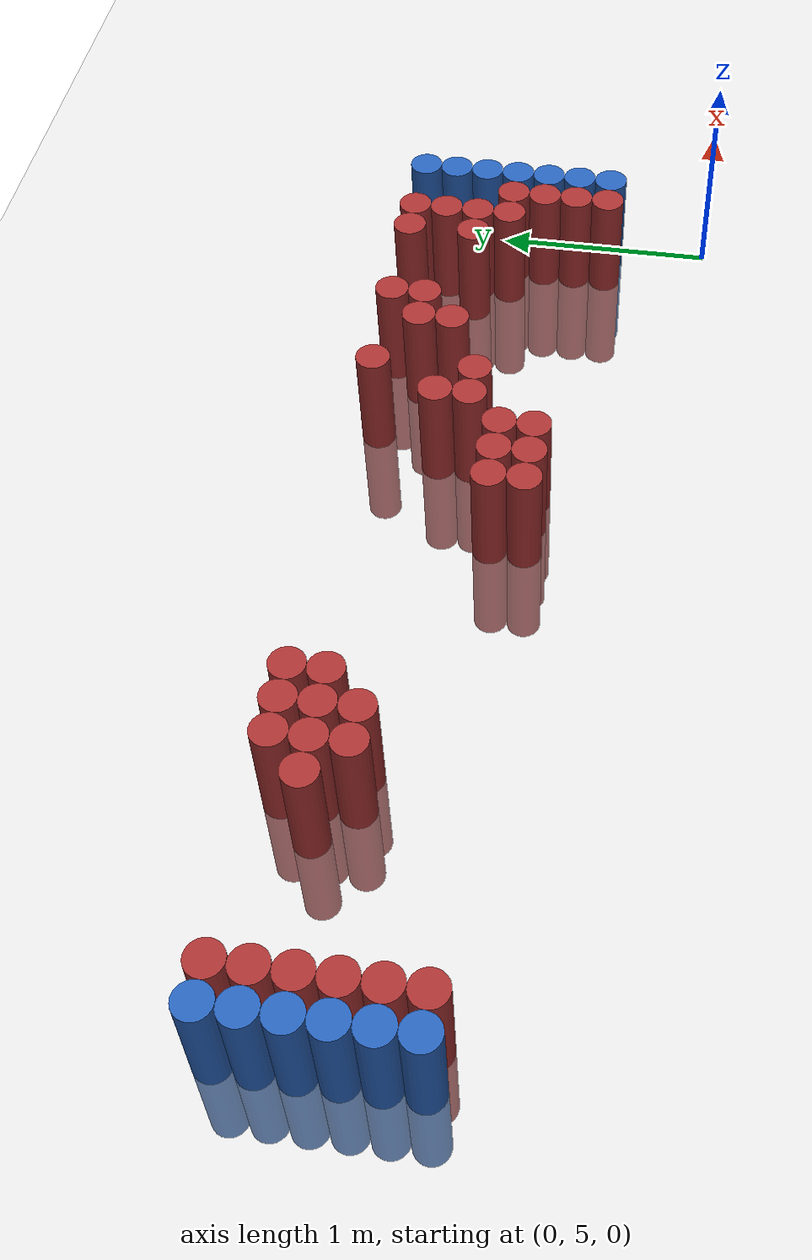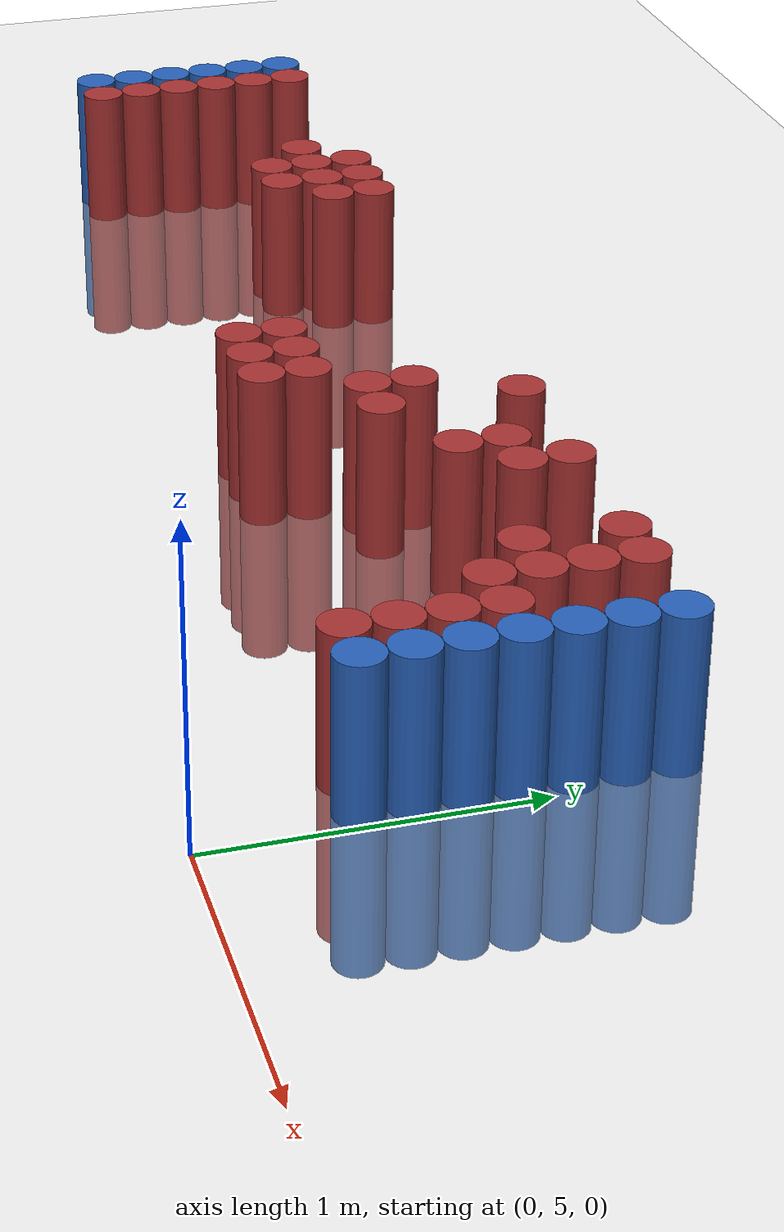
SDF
<sdf version="1.6">
 <world name="default">
  <model name="ground_plane">
   <static>1</static>
   <link name="link">
    <collision name="collision">
     <geometry><plane><normal>0 0 1</normal><size>100 100</size></plane></geometry>
     <surface><friction><ode><mu>100</mu><mu2>50</mu2></ode></friction></surface>
    </collision>
    <visual name="visual">
     <cast_shadows>0</cast_shadows>
     <geometry><plane><normal>0 0 1</normal><size>100 100</size></plane></geometry>
     <material>
      <script><uri>file://media/materials/scripts/gazebo.material</uri><name>Gazebo/Grey</name></script>
     </material>
    </visual>
   </link>
  </model>
  <model name="unit_cylinder_99">
   <static>1</static>
   <pose>-4.425000 5.625000 0.000000 0.000000 0.000000 0.000000</pose>
   <link name="link">
    <inertial>
     <mass>1</mass>
     <inertia><ixx>0.145833</ixx><ixy>0</ixy><ixz>0</ixz><iyy>0.145833</iyy><iyz>0</iyz><izz>0.125</izz></inertia>
    </inertial>
    <collision name="collision">
     <geometry><cylinder><radius>0.075000</radius><length>1</length></cylinder></geometry>
    </collision>
    <visual name="visual">
     <geometry><cylinder><radius>0.075000</radius><length>1</length></cylinder></geometry>
     <material>
      <ambient>0.152000 0.379000 0.720000 1</ambient>
      <diffuse>0.152000 0.379000 0.720000 1</diffuse>
     </material>
     <material>
      <script><name>Gazebo/Grey</name><uri>file://media/materials/scripts/gazebo.material</uri></script>
     </material>
    </visual>
   </link>
  </model>
  <model name="unit_cylinder_100">
   <static>1</static>
   <pose>-4.425000 5.775000 0.000000 0.000000 0.000000 0.000000</pose>
   <link name="link">
    <inertial>
     <mass>1</mass>
     <inertia><ixx>0.145833</ixx><ixy>0</ixy><ixz>0</ixz><iyy>0.145833</iyy><iyz>0</iyz><izz>0.125</izz></inertia>
    </inertial>
    <collision name="collision">
     <geometry><cylinder><radius>0.075000</radius><length>1</length></cylinder></geometry>
    </collision>
    <visual name="visual">
     <geometry><cylinder><radius>0.075000</radius><length>1</length></cylinder></geometry>
     <material>
      <ambient>0.152000 0.379000 0.720000 1</ambient>
      <diffuse>0.152000 0.379000 0.720000 1</diffuse>
     </material>
     <material>
      <script><name>Gazebo/Grey</name><uri>file://media/materials/scripts/gazebo.material</uri></script>
     </material>
    </visual>
   </link>
  </model>
  <model name="unit_cylinder_101">
   <static>1</static>
   <pose>-4.425000 5.925000 0.000000 0.000000 0.000000 0.000000</pose>
   <link name="link">
    <inertial>
     <mass>1</mass>
     <inertia><ixx>0.145833</ixx><ixy>0</ixy><ixz>0</ixz><iyy>0.145833</iyy><iyz>0</iyz><izz>0.125</izz></inertia>
    </inertial>
    <collision name="collision">
     <geometry><cylinder><radius>0.075000</radius><length>1</length></cylinder></geometry>
    </collision>
    <visual name="visual">
     <geometry><cylinder><radius>0.075000</radius><length>1</length></cylinder></geometry>
     <material>
      <ambient>0.152000 0.379000 0.720000 1</ambient>
      <diffuse>0.152000 0.379000 0.720000 1</diffuse>
     </material>
     <material>
      <script><name>Gazebo/Grey</name><uri>file://media/materials/scripts/gazebo.material</uri></script>
     </material>
    </visual>
   </link>
  </model>
  <model name="unit_cylinder_102">
   <static>1</static>
   <pose>-4.425000 6.075000 0.000000 0.000000 0.000000 0.000000</pose>
   <link name="link">
    <inertial>
     <mass>1</mass>
     <inertia><ixx>0.145833</ixx><ixy>0</ixy><ixz>0</ixz><iyy>0.145833</iyy><iyz>0</iyz><izz>0.125</izz></inertia>
    </inertial>
    <collision name="collision">
     <geometry><cylinder><radius>0.075000</radius><length>1</length></cylinder></geometry>
    </collision>
    <visual name="visual">
     <geometry><cylinder><radius>0.075000</radius><length>1</length></cylinder></geometry>
     <material>
      <ambient>0.152000 0.379000 0.720000 1</ambient>
      <diffuse>0.152000 0.379000 0.720000 1</diffuse>
     </material>
     <material>
      <script><name>Gazebo/Grey</name><uri>file://media/materials/scripts/gazebo.material</uri></script>
     </material>
    </visual>
   </link>
  </model>
  <model name="unit_cylinder_103">
   <static>1</static>
   <pose>-4.425000 6.225000 0.000000 0.000000 0.000000 0.000000</pose>
   <link name="link">
    <inertial>
     <mass>1</mass>
     <inertia><ixx>0.145833</ixx><ixy>0</ixy><ixz>0</ixz><iyy>0.145833</iyy><iyz>0</iyz><izz>0.125</izz></inertia>
    </inertial>
    <collision name="collision">
     <geometry><cylinder><radius>0.075000</radius><length>1</length></cylinder></geometry>
    </collision>
    <visual name="visual">
     <geometry><cylinder><radius>0.075000</radius><length>1</length></cylinder></geometry>
     <material>
      <ambient>0.152000 0.379000 0.720000 1</ambient>
      <diffuse>0.152000 0.379000 0.720000 1</diffuse>
     </material>
     <material>
      <script><name>Gazebo/Grey</name><uri>file://media/materials/scripts/gazebo.material</uri></script>
     </material>
    </visual>
   </link>
  </model>
  <model name="unit_cylinder_104">
   <static>1</static>
   <pose>-4.425000 6.375000 0.000000 0.000000 0.000000 0.000000</pose>
   <link name="link">
    <inertial>
     <mass>1</mass>
     <inertia><ixx>0.145833</ixx><ixy>0</ixy><ixz>0</ixz><iyy>0.145833</iyy><iyz>0</iyz><izz>0.125</izz></inertia>
    </inertial>
    <collision name="collision">
     <geometry><cylinder><radius>0.075000</radius><length>1</length></cylinder></geometry>
    </collision>
    <visual name="visual">
     <geometry><cylinder><radius>0.075000</radius><length>1</length></cylinder></geometry>
     <material>
      <ambient>0.152000 0.379000 0.720000 1</ambient>
      <diffuse>0.152000 0.379000 0.720000 1</diffuse>
     </material>
     <material>
      <script><name>Gazebo/Grey</name><uri>file://media/materials/scripts/gazebo.material</uri></script>
     </material>
    </visual>
   </link>
  </model>
  <model name="unit_cylinder_128">
   <static>1</static>
   <pose>-4.275000 5.625000 0.000000 0.000000 0.000000 0.000000</pose>
   <link name="link">
    <inertial>
     <mass>1</mass>
     <inertia><ixx>0.145833</ixx><ixy>0</ixy><ixz>0</ixz><iyy>0.145833</iyy><iyz>0</iyz><izz>0.125</izz></inertia>
    </inertial>
    <collision name="collision">
     <geometry><cylinder><radius>0.075000</radius><length>1</length></cylinder></geometry>
    </collision>
    <visual name="visual">
     <geometry><cylinder><radius>0.075000</radius><length>1</length></cylinder></geometry>
     <material>
      <ambient>0.648000 0.192000 0.192000 1</ambient>
      <diffuse>0.648000 0.192000 0.192000 1</diffuse>
     </material>
     <material>
      <script><name>Gazebo/Grey</name><uri>file://media/materials/scripts/gazebo.material</uri></script>
     </material>
    </visual>
   </link>
  </model>
  <model name="unit_cylinder_129">
   <static>1</static>
   <pose>-4.275000 5.775000 0.000000 0.000000 0.000000 0.000000</pose>
   <link name="link">
    <inertial>
     <mass>1</mass>
     <inertia><ixx>0.145833</ixx><ixy>0</ixy><ixz>0</ixz><iyy>0.145833</iyy><iyz>0</iyz><izz>0.125</izz></inertia>
    </inertial>
    <collision name="collision">
     <geometry><cylinder><radius>0.075000</radius><length>1</length></cylinder></geometry>
    </collision>
    <visual name="visual">
     <geometry><cylinder><radius>0.075000</radius><length>1</length></cylinder></geometry>
     <material>
      <ambient>0.648000 0.192000 0.192000 1</ambient>
      <diffuse>0.648000 0.192000 0.192000 1</diffuse>
     </material>
     <material>
      <script><name>Gazebo/Grey</name><uri>file://media/materials/scripts/gazebo.material</uri></script>
     </material>
    </visual>
   </link>
  </model>
  <model name="unit_cylinder_130">
   <static>1</static>
   <pose>-4.275000 5.925000 0.000000 0.000000 0.000000 0.000000</pose>
   <link name="link">
    <inertial>
     <mass>1</mass>
     <inertia><ixx>0.145833</ixx><ixy>0</ixy><ixz>0</ixz><iyy>0.145833</iyy><iyz>0</iyz><izz>0.125</izz></inertia>
    </inertial>
    <collision name="collision">
     <geometry><cylinder><radius>0.075000</radius><length>1</length></cylinder></geometry>
    </collision>
    <visual name="visual">
     <geometry><cylinder><radius>0.075000</radius><length>1</length></cylinder></geometry>
     <material>
      <ambient>0.648000 0.192000 0.192000 1</ambient>
      <diffuse>0.648000 0.192000 0.192000 1</diffuse>
     </material>
     <material>
      <script><name>Gazebo/Grey</name><uri>file://media/materials/scripts/gazebo.material</uri></script>
     </material>
    </visual>
   </link>
  </model>
  <model name="unit_cylinder_131">
   <static>1</static>
   <pose>-4.275000 6.075000 0.000000 0.000000 0.000000 0.000000</pose>
   <link name="link">
    <inertial>
     <mass>1</mass>
     <inertia><ixx>0.145833</ixx><ixy>0</ixy><ixz>0</ixz><iyy>0.145833</iyy><iyz>0</iyz><izz>0.125</izz></inertia>
    </inertial>
    <collision name="collision">
     <geometry><cylinder><radius>0.075000</radius><length>1</length></cylinder></geometry>
    </collision>
    <visual name="visual">
     <geometry><cylinder><radius>0.075000</radius><length>1</length></cylinder></geometry>
     <material>
      <ambient>0.648000 0.192000 0.192000 1</ambient>
      <diffuse>0.648000 0.192000 0.192000 1</diffuse>
     </material>
     <material>
      <script><name>Gazebo/Grey</name><uri>file://media/materials/scripts/gazebo.material</uri></script>
     </material>
    </visual>
   </link>
  </model>
  <model name="unit_cylinder_132">
   <static>1</static>
   <pose>-4.275000 6.225000 0.000000 0.000000 0.000000 0.000000</pose>
   <link name="link">
    <inertial>
     <mass>1</mass>
     <inertia><ixx>0.145833</ixx><ixy>0</ixy><ixz>0</ixz><iyy>0.145833</iyy><iyz>0</iyz><izz>0.125</izz></inertia>
    </inertial>
    <collision name="collision">
     <geometry><cylinder><radius>0.075000</radius><length>1</length></cylinder></geometry>
    </collision>
    <visual name="visual">
     <geometry><cylinder><radius>0.075000</radius><length>1</length></cylinder></geometry>
     <material>
      <ambient>0.648000 0.192000 0.192000 1</ambient>
      <diffuse>0.648000 0.192000 0.192000 1</diffuse>
     </material>
     <material>
      <script><name>Gazebo/Grey</name><uri>file://media/materials/scripts/gazebo.material</uri></script>
     </material>
    </visual>
   </link>
  </model>
  <model name="unit_cylinder_133">
   <static>1</static>
   <pose>-4.275000 6.375000 0.000000 0.000000 0.000000 0.000000</pose>
   <link name="link">
    <inertial>
     <mass>1</mass>
     <inertia><ixx>0.145833</ixx><ixy>0</ixy><ixz>0</ixz><iyy>0.145833</iyy><iyz>0</iyz><izz>0.125</izz></inertia>
    </inertial>
    <collision name="collision">
     <geometry><cylinder><radius>0.075000</radius><length>1</length></cylinder></geometry>
    </collision>
    <visual name="visual">
     <geometry><cylinder><radius>0.075000</radius><length>1</length></cylinder></geometry>
     <material>
      <ambient>0.648000 0.192000 0.192000 1</ambient>
      <diffuse>0.648000 0.192000 0.192000 1</diffuse>
     </material>
     <material>
      <script><name>Gazebo/Grey</name><uri>file://media/materials/scripts/gazebo.material</uri></script>
     </material>
    </visual>
   </link>
  </model>
  <model name="unit_cylinder_162">
   <static>1</static>
   <pose>-3.525000 6.225000 0.000000 0.000000 0.000000 0.000000</pose>
   <link name="link">
    <inertial>
     <mass>1</mass>
     <inertia><ixx>0.145833</ixx><ixy>0</ixy><ixz>0</ixz><iyy>0.145833</iyy><iyz>0</iyz><izz>0.125</izz></inertia>
    </inertial>
    <collision name="collision">
     <geometry><cylinder><radius>0.075000</radius><length>1</length></cylinder></geometry>
    </collision>
    <visual name="visual">
     <geometry><cylinder><radius>0.075000</radius><length>1</length></cylinder></geometry>
     <material>
      <ambient>0.648000 0.192000 0.192000 1</ambient>
      <diffuse>0.648000 0.192000 0.192000 1</diffuse>
     </material>
     <material>
      <script><name>Gazebo/Grey</name><uri>file://media/materials/scripts/gazebo.material</uri></script>
     </material>
    </visual>
   </link>
  </model>
  <model name="unit_cylinder_165">
   <static>1</static>
   <pose>-3.375000 6.075000 0.000000 0.000000 0.000000 0.000000</pose>
   <link name="link">
    <inertial>
     <mass>1</mass>
     <inertia><ixx>0.145833</ixx><ixy>0</ixy><ixz>0</ixz><iyy>0.145833</iyy><iyz>0</iyz><izz>0.125</izz></inertia>
    </inertial>
    <collision name="collision">
     <geometry><cylinder><radius>0.075000</radius><length>1</length></cylinder></geometry>
    </collision>
    <visual name="visual">
     <geometry><cylinder><radius>0.075000</radius><length>1</length></cylinder></geometry>
     <material>
      <ambient>0.648000 0.192000 0.192000 1</ambient>
      <diffuse>0.648000 0.192000 0.192000 1</diffuse>
     </material>
     <material>
      <script><name>Gazebo/Grey</name><uri>file://media/materials/scripts/gazebo.material</uri></script>
     </material>
    </visual>
   </link>
  </model>
  <model name="unit_cylinder_166">
   <static>1</static>
   <pose>-3.375000 6.225000 0.000000 0.000000 0.000000 0.000000</pose>
   <link name="link">
    <inertial>
     <mass>1</mass>
     <inertia><ixx>0.145833</ixx><ixy>0</ixy><ixz>0</ixz><iyy>0.145833</iyy><iyz>0</iyz><izz>0.125</izz></inertia>
    </inertial>
    <collision name="collision">
     <geometry><cylinder><radius>0.075000</radius><length>1</length></cylinder></geometry>
    </collision>
    <visual name="visual">
     <geometry><cylinder><radius>0.075000</radius><length>1</length></cylinder></geometry>
     <material>
      <ambient>0.648000 0.192000 0.192000 1</ambient>
      <diffuse>0.648000 0.192000 0.192000 1</diffuse>
     </material>
     <material>
      <script><name>Gazebo/Grey</name><uri>file://media/materials/scripts/gazebo.material</uri></script>
     </material>
    </visual>
   </link>
  </model>
  <model name="unit_cylinder_167">
   <static>1</static>
   <pose>-3.375000 6.375000 0.000000 0.000000 0.000000 0.000000</pose>
   <link name="link">
    <inertial>
     <mass>1</mass>
     <inertia><ixx>0.145833</ixx><ixy>0</ixy><ixz>0</ixz><iyy>0.145833</iyy><iyz>0</iyz><izz>0.125</izz></inertia>
    </inertial>
    <collision name="collision">
     <geometry><cylinder><radius>0.075000</radius><length>1</length></cylinder></geometry>
    </collision>
    <visual name="visual">
     <geometry><cylinder><radius>0.075000</radius><length>1</length></cylinder></geometry>
     <material>
      <ambient>0.648000 0.192000 0.192000 1</ambient>
      <diffuse>0.648000 0.192000 0.192000 1</diffuse>
     </material>
     <material>
      <script><name>Gazebo/Grey</name><uri>file://media/materials/scripts/gazebo.material</uri></script>
     </material>
    </visual>
   </link>
  </model>
  <model name="unit_cylinder_173">
   <static>1</static>
   <pose>-3.225000 6.075000 0.000000 0.000000 0.000000 0.000000</pose>
   <link name="link">
    <inertial>
     <mass>1</mass>
     <inertia><ixx>0.145833</ixx><ixy>0</ixy><ixz>0</ixz><iyy>0.145833</iyy><iyz>0</iyz><izz>0.125</izz></inertia>
    </inertial>
    <collision name="collision">
     <geometry><cylinder><radius>0.075000</radius><length>1</length></cylinder></geometry>
    </collision>
    <visual name="visual">
     <geometry><cylinder><radius>0.075000</radius><length>1</length></cylinder></geometry>
     <material>
      <ambient>0.648000 0.192000 0.192000 1</ambient>
      <diffuse>0.648000 0.192000 0.192000 1</diffuse>
     </material>
     <material>
      <script><name>Gazebo/Grey</name><uri>file://media/materials/scripts/gazebo.material</uri></script>
     </material>
    </visual>
   </link>
  </model>
  <model name="unit_cylinder_174">
   <static>1</static>
   <pose>-3.225000 6.225000 0.000000 0.000000 0.000000 0.000000</pose>
   <link name="link">
    <inertial>
     <mass>1</mass>
     <inertia><ixx>0.145833</ixx><ixy>0</ixy><ixz>0</ixz><iyy>0.145833</iyy><iyz>0</iyz><izz>0.125</izz></inertia>
    </inertial>
    <collision name="collision">
     <geometry><cylinder><radius>0.075000</radius><length>1</length></cylinder></geometry>
    </collision>
    <visual name="visual">
     <geometry><cylinder><radius>0.075000</radius><length>1</length></cylinder></geometry>
     <material>
      <ambient>0.648000 0.192000 0.192000 1</ambient>
      <diffuse>0.648000 0.192000 0.192000 1</diffuse>
     </material>
     <material>
      <script><name>Gazebo/Grey</name><uri>file://media/materials/scripts/gazebo.material</uri></script>
     </material>
    </visual>
   </link>
  </model>
  <model name="unit_cylinder_175">
   <static>1</static>
   <pose>-3.225000 6.375000 0.000000 0.000000 0.000000 0.000000</pose>
   <link name="link">
    <inertial>
     <mass>1</mass>
     <inertia><ixx>0.145833</ixx><ixy>0</ixy><ixz>0</ixz><iyy>0.145833</iyy><iyz>0</iyz><izz>0.125</izz></inertia>
    </inertial>
    <collision name="collision">
     <geometry><cylinder><radius>0.075000</radius><length>1</length></cylinder></geometry>
    </collision>
    <visual name="visual">
     <geometry><cylinder><radius>0.075000</radius><length>1</length></cylinder></geometry>
     <material>
      <ambient>0.648000 0.192000 0.192000 1</ambient>
      <diffuse>0.648000 0.192000 0.192000 1</diffuse>
     </material>
     <material>
      <script><name>Gazebo/Grey</name><uri>file://media/materials/scripts/gazebo.material</uri></script>
     </material>
    </visual>
   </link>
  </model>
  <model name="unit_cylinder_183">
   <static>1</static>
   <pose>-3.075000 6.225000 0.000000 0.000000 0.000000 0.000000</pose>
   <link name="link">
    <inertial>
     <mass>1</mass>
     <inertia><ixx>0.145833</ixx><ixy>0</ixy><ixz>0</ixz><iyy>0.145833</iyy><iyz>0</iyz><izz>0.125</izz></inertia>
    </inertial>
    <collision name="collision">
     <geometry><cylinder><radius>0.075000</radius><length>1</length></cylinder></geometry>
    </collision>
    <visual name="visual">
     <geometry><cylinder><radius>0.075000</radius><length>1</length></cylinder></geometry>
     <material>
      <ambient>0.648000 0.192000 0.192000 1</ambient>
      <diffuse>0.648000 0.192000 0.192000 1</diffuse>
     </material>
     <material>
      <script><name>Gazebo/Grey</name><uri>file://media/materials/scripts/gazebo.material</uri></script>
     </material>
    </visual>
   </link>
  </model>
  <model name="unit_cylinder_184">
   <static>1</static>
   <pose>-3.075000 6.375000 0.000000 0.000000 0.000000 0.000000</pose>
   <link name="link">
    <inertial>
     <mass>1</mass>
     <inertia><ixx>0.145833</ixx><ixy>0</ixy><ixz>0</ixz><iyy>0.145833</iyy><iyz>0</iyz><izz>0.125</izz></inertia>
    </inertial>
    <collision name="collision">
     <geometry><cylinder><radius>0.075000</radius><length>1</length></cylinder></geometry>
    </collision>
    <visual name="visual">
     <geometry><cylinder><radius>0.075000</radius><length>1</length></cylinder></geometry>
     <material>
      <ambient>0.648000 0.192000 0.192000 1</ambient>
      <diffuse>0.648000 0.192000 0.192000 1</diffuse>
     </material>
     <material>
      <script><name>Gazebo/Grey</name><uri>file://media/materials/scripts/gazebo.material</uri></script>
     </material>
    </visual>
   </link>
  </model>
  <model name="unit_cylinder_191">
   <static>1</static>
   <pose>-2.025000 5.625000 0.000000 0.000000 0.000000 0.000000</pose>
   <link name="link">
    <inertial>
     <mass>1</mass>
     <inertia><ixx>0.145833</ixx><ixy>0</ixy><ixz>0</ixz><iyy>0.145833</iyy><iyz>0</iyz><izz>0.125</izz></inertia>
    </inertial>
    <collision name="collision">
     <geometry><cylinder><radius>0.075000</radius><length>1</length></cylinder></geometry>
    </collision>
    <visual name="visual">
     <geometry><cylinder><radius>0.075000</radius><length>1</length></cylinder></geometry>
     <material>
      <ambient>0.648000 0.192000 0.192000 1</ambient>
      <diffuse>0.648000 0.192000 0.192000 1</diffuse>
     </material>
     <material>
      <script><name>Gazebo/Grey</name><uri>file://media/materials/scripts/gazebo.material</uri></script>
     </material>
    </visual>
   </link>
  </model>
  <model name="unit_cylinder_192">
   <static>1</static>
   <pose>-2.025000 5.775000 0.000000 0.000000 0.000000 0.000000</pose>
   <link name="link">
    <inertial>
     <mass>1</mass>
     <inertia><ixx>0.145833</ixx><ixy>0</ixy><ixz>0</ixz><iyy>0.145833</iyy><iyz>0</iyz><izz>0.125</izz></inertia>
    </inertial>
    <collision name="collision">
     <geometry><cylinder><radius>0.075000</radius><length>1</length></cylinder></geometry>
    </collision>
    <visual name="visual">
     <geometry><cylinder><radius>0.075000</radius><length>1</length></cylinder></geometry>
     <material>
      <ambient>0.648000 0.192000 0.192000 1</ambient>
      <diffuse>0.648000 0.192000 0.192000 1</diffuse>
     </material>
     <material>
      <script><name>Gazebo/Grey</name><uri>file://media/materials/scripts/gazebo.material</uri></script>
     </material>
    </visual>
   </link>
  </model>
  <model name="unit_cylinder_200">
   <static>1</static>
   <pose>-1.875000 5.625000 0.000000 0.000000 0.000000 0.000000</pose>
   <link name="link">
    <inertial>
     <mass>1</mass>
     <inertia><ixx>0.145833</ixx><ixy>0</ixy><ixz>0</ixz><iyy>0.145833</iyy><iyz>0</iyz><izz>0.125</izz></inertia>
    </inertial>
    <collision name="collision">
     <geometry><cylinder><radius>0.075000</radius><length>1</length></cylinder></geometry>
    </collision>
    <visual name="visual">
     <geometry><cylinder><radius>0.075000</radius><length>1</length></cylinder></geometry>
     <material>
      <ambient>0.648000 0.192000 0.192000 1</ambient>
      <diffuse>0.648000 0.192000 0.192000 1</diffuse>
     </material>
     <material>
      <script><name>Gazebo/Grey</name><uri>file://media/materials/scripts/gazebo.material</uri></script>
     </material>
    </visual>
   </link>
  </model>
  <model name="unit_cylinder_201">
   <static>1</static>
   <pose>-1.875000 5.775000 0.000000 0.000000 0.000000 0.000000</pose>
   <link name="link">
    <inertial>
     <mass>1</mass>
     <inertia><ixx>0.145833</ixx><ixy>0</ixy><ixz>0</ixz><iyy>0.145833</iyy><iyz>0</iyz><izz>0.125</izz></inertia>
    </inertial>
    <collision name="collision">
     <geometry><cylinder><radius>0.075000</radius><length>1</length></cylinder></geometry>
    </collision>
    <visual name="visual">
     <geometry><cylinder><radius>0.075000</radius><length>1</length></cylinder></geometry>
     <material>
      <ambient>0.648000 0.192000 0.192000 1</ambient>
      <diffuse>0.648000 0.192000 0.192000 1</diffuse>
     </material>
     <material>
      <script><name>Gazebo/Grey</name><uri>file://media/materials/scripts/gazebo.material</uri></script>
     </material>
    </visual>
   </link>
  </model>
  <model name="unit_cylinder_209">
   <static>1</static>
   <pose>-1.725000 5.625000 0.000000 0.000000 0.000000 0.000000</pose>
   <link name="link">
    <inertial>
     <mass>1</mass>
     <inertia><ixx>0.145833</ixx><ixy>0</ixy><ixz>0</ixz><iyy>0.145833</iyy><iyz>0</iyz><izz>0.125</izz></inertia>
    </inertial>
    <collision name="collision">
     <geometry><cylinder><radius>0.075000</radius><length>1</length></cylinder></geometry>
    </collision>
    <visual name="visual">
     <geometry><cylinder><radius>0.075000</radius><length>1</length></cylinder></geometry>
     <material>
      <ambient>0.648000 0.192000 0.192000 1</ambient>
      <diffuse>0.648000 0.192000 0.192000 1</diffuse>
     </material>
     <material>
      <script><name>Gazebo/Grey</name><uri>file://media/materials/scripts/gazebo.material</uri></script>
     </material>
    </visual>
   </link>
  </model>
  <model name="unit_cylinder_210">
   <static>1</static>
   <pose>-1.725000 5.775000 0.000000 0.000000 0.000000 0.000000</pose>
   <link name="link">
    <inertial>
     <mass>1</mass>
     <inertia><ixx>0.145833</ixx><ixy>0</ixy><ixz>0</ixz><iyy>0.145833</iyy><iyz>0</iyz><izz>0.125</izz></inertia>
    </inertial>
    <collision name="collision">
     <geometry><cylinder><radius>0.075000</radius><length>1</length></cylinder></geometry>
    </collision>
    <visual name="visual">
     <geometry><cylinder><radius>0.075000</radius><length>1</length></cylinder></geometry>
     <material>
      <ambient>0.648000 0.192000 0.192000 1</ambient>
      <diffuse>0.648000 0.192000 0.192000 1</diffuse>
     </material>
     <material>
      <script><name>Gazebo/Grey</name><uri>file://media/materials/scripts/gazebo.material</uri></script>
     </material>
    </visual>
   </link>
  </model>
  <model name="unit_cylinder_216">
   <static>1</static>
   <pose>-1.575000 5.925000 0.000000 0.000000 0.000000 0.000000</pose>
   <link name="link">
    <inertial>
     <mass>1</mass>
     <inertia><ixx>0.145833</ixx><ixy>0</ixy><ixz>0</ixz><iyy>0.145833</iyy><iyz>0</iyz><izz>0.125</izz></inertia>
    </inertial>
    <collision name="collision">
     <geometry><cylinder><radius>0.075000</radius><length>1</length></cylinder></geometry>
    </collision>
    <visual name="visual">
     <geometry><cylinder><radius>0.075000</radius><length>1</length></cylinder></geometry>
     <material>
      <ambient>0.648000 0.192000 0.192000 1</ambient>
      <diffuse>0.648000 0.192000 0.192000 1</diffuse>
     </material>
     <material>
      <script><name>Gazebo/Grey</name><uri>file://media/materials/scripts/gazebo.material</uri></script>
     </material>
    </visual>
   </link>
  </model>
  <model name="unit_cylinder_217">
   <static>1</static>
   <pose>-1.575000 6.075000 0.000000 0.000000 0.000000 0.000000</pose>
   <link name="link">
    <inertial>
     <mass>1</mass>
     <inertia><ixx>0.145833</ixx><ixy>0</ixy><ixz>0</ixz><iyy>0.145833</iyy><iyz>0</iyz><izz>0.125</izz></inertia>
    </inertial>
    <collision name="collision">
     <geometry><cylinder><radius>0.075000</radius><length>1</length></cylinder></geometry>
    </collision>
    <visual name="visual">
     <geometry><cylinder><radius>0.075000</radius><length>1</length></cylinder></geometry>
     <material>
      <ambient>0.648000 0.192000 0.192000 1</ambient>
      <diffuse>0.648000 0.192000 0.192000 1</diffuse>
     </material>
     <material>
      <script><name>Gazebo/Grey</name><uri>file://media/materials/scripts/gazebo.material</uri></script>
     </material>
    </visual>
   </link>
  </model>
  <model name="unit_cylinder_222">
   <static>1</static>
   <pose>-1.425000 5.925000 0.000000 0.000000 0.000000 0.000000</pose>
   <link name="link">
    <inertial>
     <mass>1</mass>
     <inertia><ixx>0.145833</ixx><ixy>0</ixy><ixz>0</ixz><iyy>0.145833</iyy><iyz>0</iyz><izz>0.125</izz></inertia>
    </inertial>
    <collision name="collision">
     <geometry><cylinder><radius>0.075000</radius><length>1</length></cylinder></geometry>
    </collision>
    <visual name="visual">
     <geometry><cylinder><radius>0.075000</radius><length>1</length></cylinder></geometry>
     <material>
      <ambient>0.648000 0.192000 0.192000 1</ambient>
      <diffuse>0.648000 0.192000 0.192000 1</diffuse>
     </material>
     <material>
      <script><name>Gazebo/Grey</name><uri>file://media/materials/scripts/gazebo.material</uri></script>
     </material>
    </visual>
   </link>
  </model>
  <model name="unit_cylinder_223">
   <static>1</static>
   <pose>-1.425000 6.375000 0.000000 0.000000 0.000000 0.000000</pose>
   <link name="link">
    <inertial>
     <mass>1</mass>
     <inertia><ixx>0.145833</ixx><ixy>0</ixy><ixz>0</ixz><iyy>0.145833</iyy><iyz>0</iyz><izz>0.125</izz></inertia>
    </inertial>
    <collision name="collision">
     <geometry><cylinder><radius>0.075000</radius><length>1</length></cylinder></geometry>
    </collision>
    <visual name="visual">
     <geometry><cylinder><radius>0.075000</radius><length>1</length></cylinder></geometry>
     <material>
      <ambient>0.648000 0.192000 0.192000 1</ambient>
      <diffuse>0.648000 0.192000 0.192000 1</diffuse>
     </material>
     <material>
      <script><name>Gazebo/Grey</name><uri>file://media/materials/scripts/gazebo.material</uri></script>
     </material>
    </visual>
   </link>
  </model>
  <model name="unit_cylinder_229">
   <static>1</static>
   <pose>-1.125000 6.075000 0.000000 0.000000 0.000000 0.000000</pose>
   <link name="link">
    <inertial>
     <mass>1</mass>
     <inertia><ixx>0.145833</ixx><ixy>0</ixy><ixz>0</ixz><iyy>0.145833</iyy><iyz>0</iyz><izz>0.125</izz></inertia>
    </inertial>
    <collision name="collision">
     <geometry><cylinder><radius>0.075000</radius><length>1</length></cylinder></geometry>
    </collision>
    <visual name="visual">
     <geometry><cylinder><radius>0.075000</radius><length>1</length></cylinder></geometry>
     <material>
      <ambient>0.648000 0.192000 0.192000 1</ambient>
      <diffuse>0.648000 0.192000 0.192000 1</diffuse>
     </material>
     <material>
      <script><name>Gazebo/Grey</name><uri>file://media/materials/scripts/gazebo.material</uri></script>
     </material>
    </visual>
   </link>
  </model>
  <model name="unit_cylinder_230">
   <static>1</static>
   <pose>-1.125000 6.225000 0.000000 0.000000 0.000000 0.000000</pose>
   <link name="link">
    <inertial>
     <mass>1</mass>
     <inertia><ixx>0.145833</ixx><ixy>0</ixy><ixz>0</ixz><iyy>0.145833</iyy><iyz>0</iyz><izz>0.125</izz></inertia>
    </inertial>
    <collision name="collision">
     <geometry><cylinder><radius>0.075000</radius><length>1</length></cylinder></geometry>
    </collision>
    <visual name="visual">
     <geometry><cylinder><radius>0.075000</radius><length>1</length></cylinder></geometry>
     <material>
      <ambient>0.648000 0.192000 0.192000 1</ambient>
      <diffuse>0.648000 0.192000 0.192000 1</diffuse>
     </material>
     <material>
      <script><name>Gazebo/Grey</name><uri>file://media/materials/scripts/gazebo.material</uri></script>
     </material>
    </visual>
   </link>
  </model>
  <model name="unit_cylinder_236">
   <static>1</static>
   <pose>-0.975000 6.225000 0.000000 0.000000 0.000000 0.000000</pose>
   <link name="link">
    <inertial>
     <mass>1</mass>
     <inertia><ixx>0.145833</ixx><ixy>0</ixy><ixz>0</ixz><iyy>0.145833</iyy><iyz>0</iyz><izz>0.125</izz></inertia>
    </inertial>
    <collision name="collision">
     <geometry><cylinder><radius>0.075000</radius><length>1</length></cylinder></geometry>
    </collision>
    <visual name="visual">
     <geometry><cylinder><radius>0.075000</radius><length>1</length></cylinder></geometry>
     <material>
      <ambient>0.648000 0.192000 0.192000 1</ambient>
      <diffuse>0.648000 0.192000 0.192000 1</diffuse>
     </material>
     <material>
      <script><name>Gazebo/Grey</name><uri>file://media/materials/scripts/gazebo.material</uri></script>
     </material>
    </visual>
   </link>
  </model>
  <model name="unit_cylinder_237">
   <static>1</static>
   <pose>-0.975000 6.375000 0.000000 0.000000 0.000000 0.000000</pose>
   <link name="link">
    <inertial>
     <mass>1</mass>
     <inertia><ixx>0.145833</ixx><ixy>0</ixy><ixz>0</ixz><iyy>0.145833</iyy><iyz>0</iyz><izz>0.125</izz></inertia>
    </inertial>
    <collision name="collision">
     <geometry><cylinder><radius>0.075000</radius><length>1</length></cylinder></geometry>
    </collision>
    <visual name="visual">
     <geometry><cylinder><radius>0.075000</radius><length>1</length></cylinder></geometry>
     <material>
      <ambient>0.648000 0.192000 0.192000 1</ambient>
      <diffuse>0.648000 0.192000 0.192000 1</diffuse>
     </material>
     <material>
      <script><name>Gazebo/Grey</name><uri>file://media/materials/scripts/gazebo.material</uri></script>
     </material>
    </visual>
   </link>
  </model>
  <model name="unit_cylinder_254">
   <static>1</static>
   <pose>-0.525000 6.075000 0.000000 0.000000 0.000000 0.000000</pose>
   <link name="link">
    <inertial>
     <mass>1</mass>
     <inertia><ixx>0.145833</ixx><ixy>0</ixy><ixz>0</ixz><iyy>0.145833</iyy><iyz>0</iyz><izz>0.125</izz></inertia>
    </inertial>
    <collision name="collision">
     <geometry><cylinder><radius>0.075000</radius><length>1</length></cylinder></geometry>
    </collision>
    <visual name="visual">
     <geometry><cylinder><radius>0.075000</radius><length>1</length></cylinder></geometry>
     <material>
      <ambient>0.648000 0.192000 0.192000 1</ambient>
      <diffuse>0.648000 0.192000 0.192000 1</diffuse>
     </material>
     <material>
      <script><name>Gazebo/Grey</name><uri>file://media/materials/scripts/gazebo.material</uri></script>
     </material>
    </visual>
   </link>
  </model>
  <model name="unit_cylinder_255">
   <static>1</static>
   <pose>-0.525000 6.375000 0.000000 0.000000 0.000000 0.000000</pose>
   <link name="link">
    <inertial>
     <mass>1</mass>
     <inertia><ixx>0.145833</ixx><ixy>0</ixy><ixz>0</ixz><iyy>0.145833</iyy><iyz>0</iyz><izz>0.125</izz></inertia>
    </inertial>
    <collision name="collision">
     <geometry><cylinder><radius>0.075000</radius><length>1</length></cylinder></geometry>
    </collision>
    <visual name="visual">
     <geometry><cylinder><radius>0.075000</radius><length>1</length></cylinder></geometry>
     <material>
      <ambient>0.648000 0.192000 0.192000 1</ambient>
      <diffuse>0.648000 0.192000 0.192000 1</diffuse>
     </material>
     <material>
      <script><name>Gazebo/Grey</name><uri>file://media/materials/scripts/gazebo.material</uri></script>
     </material>
    </visual>
   </link>
  </model>
  <model name="unit_cylinder_259">
   <static>1</static>
   <pose>-0.375000 5.925000 0.000000 0.000000 0.000000 0.000000</pose>
   <link name="link">
    <inertial>
     <mass>1</mass>
     <inertia><ixx>0.145833</ixx><ixy>0</ixy><ixz>0</ixz><iyy>0.145833</iyy><iyz>0</iyz><izz>0.125</izz></inertia>
    </inertial>
    <collision name="collision">
     <geometry><cylinder><radius>0.075000</radius><length>1</length></cylinder></geometry>
    </collision>
    <visual name="visual">
     <geometry><cylinder><radius>0.075000</radius><length>1</length></cylinder></geometry>
     <material>
      <ambient>0.648000 0.192000 0.192000 1</ambient>
      <diffuse>0.648000 0.192000 0.192000 1</diffuse>
     </material>
     <material>
      <script><name>Gazebo/Grey</name><uri>file://media/materials/scripts/gazebo.material</uri></script>
     </material>
    </visual>
   </link>
  </model>
  <model name="unit_cylinder_260">
   <static>1</static>
   <pose>-0.375000 6.075000 0.000000 0.000000 0.000000 0.000000</pose>
   <link name="link">
    <inertial>
     <mass>1</mass>
     <inertia><ixx>0.145833</ixx><ixy>0</ixy><ixz>0</ixz><iyy>0.145833</iyy><iyz>0</iyz><izz>0.125</izz></inertia>
    </inertial>
    <collision name="collision">
     <geometry><cylinder><radius>0.075000</radius><length>1</length></cylinder></geometry>
    </collision>
    <visual name="visual">
     <geometry><cylinder><radius>0.075000</radius><length>1</length></cylinder></geometry>
     <material>
      <ambient>0.648000 0.192000 0.192000 1</ambient>
      <diffuse>0.648000 0.192000 0.192000 1</diffuse>
     </material>
     <material>
      <script><name>Gazebo/Grey</name><uri>file://media/materials/scripts/gazebo.material</uri></script>
     </material>
    </visual>
   </link>
  </model>
  <model name="unit_cylinder_261">
   <static>1</static>
   <pose>-0.375000 6.225000 0.000000 0.000000 0.000000 0.000000</pose>
   <link name="link">
    <inertial>
     <mass>1</mass>
     <inertia><ixx>0.145833</ixx><ixy>0</ixy><ixz>0</ixz><iyy>0.145833</iyy><iyz>0</iyz><izz>0.125</izz></inertia>
    </inertial>
    <collision name="collision">
     <geometry><cylinder><radius>0.075000</radius><length>1</length></cylinder></geometry>
    </collision>
    <visual name="visual">
     <geometry><cylinder><radius>0.075000</radius><length>1</length></cylinder></geometry>
     <material>
      <ambient>0.648000 0.192000 0.192000 1</ambient>
      <diffuse>0.648000 0.192000 0.192000 1</diffuse>
     </material>
     <material>
      <script><name>Gazebo/Grey</name><uri>file://media/materials/scripts/gazebo.material</uri></script>
     </material>
    </visual>
   </link>
  </model>
  <model name="unit_cylinder_262">
   <static>1</static>
   <pose>-0.375000 6.375000 0.000000 0.000000 0.000000 0.000000</pose>
   <link name="link">
    <inertial>
     <mass>1</mass>
     <inertia><ixx>0.145833</ixx><ixy>0</ixy><ixz>0</ixz><iyy>0.145833</iyy><iyz>0</iyz><izz>0.125</izz></inertia>
    </inertial>
    <collision name="collision">
     <geometry><cylinder><radius>0.075000</radius><length>1</length></cylinder></geometry>
    </collision>
    <visual name="visual">
     <geometry><cylinder><radius>0.075000</radius><length>1</length></cylinder></geometry>
     <material>
      <ambient>0.648000 0.192000 0.192000 1</ambient>
      <diffuse>0.648000 0.192000 0.192000 1</diffuse>
     </material>
     <material>
      <script><name>Gazebo/Grey</name><uri>file://media/materials/scripts/gazebo.material</uri></script>
     </material>
    </visual>
   </link>
  </model>
  <model name="unit_cylinder_268">
   <static>1</static>
   <pose>-0.225000 5.475000 0.000000 0.000000 0.000000 0.000000</pose>
   <link name="link">
    <inertial>
     <mass>1</mass>
     <inertia><ixx>0.145833</ixx><ixy>0</ixy><ixz>0</ixz><iyy>0.145833</iyy><iyz>0</iyz><izz>0.125</izz></inertia>
    </inertial>
    <collision name="collision">
     <geometry><cylinder><radius>0.075000</radius><length>1</length></cylinder></geometry>
    </collision>
    <visual name="visual">
     <geometry><cylinder><radius>0.075000</radius><length>1</length></cylinder></geometry>
     <material>
      <ambient>0.648000 0.192000 0.192000 1</ambient>
      <diffuse>0.648000 0.192000 0.192000 1</diffuse>
     </material>
     <material>
      <script><name>Gazebo/Grey</name><uri>file://media/materials/scripts/gazebo.material</uri></script>
     </material>
    </visual>
   </link>
  </model>
  <model name="unit_cylinder_269">
   <static>1</static>
   <pose>-0.225000 5.625000 0.000000 0.000000 0.000000 0.000000</pose>
   <link name="link">
    <inertial>
     <mass>1</mass>
     <inertia><ixx>0.145833</ixx><ixy>0</ixy><ixz>0</ixz><iyy>0.145833</iyy><iyz>0</iyz><izz>0.125</izz></inertia>
    </inertial>
    <collision name="collision">
     <geometry><cylinder><radius>0.075000</radius><length>1</length></cylinder></geometry>
    </collision>
    <visual name="visual">
     <geometry><cylinder><radius>0.075000</radius><length>1</length></cylinder></geometry>
     <material>
      <ambient>0.648000 0.192000 0.192000 1</ambient>
      <diffuse>0.648000 0.192000 0.192000 1</diffuse>
     </material>
     <material>
      <script><name>Gazebo/Grey</name><uri>file://media/materials/scripts/gazebo.material</uri></script>
     </material>
    </visual>
   </link>
  </model>
  <model name="unit_cylinder_270">
   <static>1</static>
   <pose>-0.225000 5.775000 0.000000 0.000000 0.000000 0.000000</pose>
   <link name="link">
    <inertial>
     <mass>1</mass>
     <inertia><ixx>0.145833</ixx><ixy>0</ixy><ixz>0</ixz><iyy>0.145833</iyy><iyz>0</iyz><izz>0.125</izz></inertia>
    </inertial>
    <collision name="collision">
     <geometry><cylinder><radius>0.075000</radius><length>1</length></cylinder></geometry>
    </collision>
    <visual name="visual">
     <geometry><cylinder><radius>0.075000</radius><length>1</length></cylinder></geometry>
     <material>
      <ambient>0.648000 0.192000 0.192000 1</ambient>
      <diffuse>0.648000 0.192000 0.192000 1</diffuse>
     </material>
     <material>
      <script><name>Gazebo/Grey</name><uri>file://media/materials/scripts/gazebo.material</uri></script>
     </material>
    </visual>
   </link>
  </model>
  <model name="unit_cylinder_271">
   <static>1</static>
   <pose>-0.225000 5.925000 0.000000 0.000000 0.000000 0.000000</pose>
   <link name="link">
    <inertial>
     <mass>1</mass>
     <inertia><ixx>0.145833</ixx><ixy>0</ixy><ixz>0</ixz><iyy>0.145833</iyy><iyz>0</iyz><izz>0.125</izz></inertia>
    </inertial>
    <collision name="collision">
     <geometry><cylinder><radius>0.075000</radius><length>1</length></cylinder></geometry>
    </collision>
    <visual name="visual">
     <geometry><cylinder><radius>0.075000</radius><length>1</length></cylinder></geometry>
     <material>
      <ambient>0.648000 0.192000 0.192000 1</ambient>
      <diffuse>0.648000 0.192000 0.192000 1</diffuse>
     </material>
     <material>
      <script><name>Gazebo/Grey</name><uri>file://media/materials/scripts/gazebo.material</uri></script>
     </material>
    </visual>
   </link>
  </model>
  <model name="unit_cylinder_288">
   <static>1</static>
   <pose>-0.075000 5.475000 0.000000 0.000000 0.000000 0.000000</pose>
   <link name="link">
    <inertial>
     <mass>1</mass>
     <inertia><ixx>0.145833</ixx><ixy>0</ixy><ixz>0</ixz><iyy>0.145833</iyy><iyz>0</iyz><izz>0.125</izz></inertia>
    </inertial>
    <collision name="collision">
     <geometry><cylinder><radius>0.075000</radius><length>1</length></cylinder></geometry>
    </collision>
    <visual name="visual">
     <geometry><cylinder><radius>0.075000</radius><length>1</length></cylinder></geometry>
     <material>
      <ambient>0.152000 0.379000 0.720000 1</ambient>
      <diffuse>0.152000 0.379000 0.720000 1</diffuse>
     </material>
     <material>
      <script><name>Gazebo/Grey</name><uri>file://media/materials/scripts/gazebo.material</uri></script>
     </material>
    </visual>
   </link>
  </model>
  <model name="unit_cylinder_289">
   <static>1</static>
   <pose>-0.075000 5.625000 0.000000 0.000000 0.000000 0.000000</pose>
   <link name="link">
    <inertial>
     <mass>1</mass>
     <inertia><ixx>0.145833</ixx><ixy>0</ixy><ixz>0</ixz><iyy>0.145833</iyy><iyz>0</iyz><izz>0.125</izz></inertia>
    </inertial>
    <collision name="collision">
     <geometry><cylinder><radius>0.075000</radius><length>1</length></cylinder></geometry>
    </collision>
    <visual name="visual">
     <geometry><cylinder><radius>0.075000</radius><length>1</length></cylinder></geometry>
     <material>
      <ambient>0.152000 0.379000 0.720000 1</ambient>
      <diffuse>0.152000 0.379000 0.720000 1</diffuse>
     </material>
     <material>
      <script><name>Gazebo/Grey</name><uri>file://media/materials/scripts/gazebo.material</uri></script>
     </material>
    </visual>
   </link>
  </model>
  <model name="unit_cylinder_290">
   <static>1</static>
   <pose>-0.075000 5.775000 0.000000 0.000000 0.000000 0.000000</pose>
   <link name="link">
    <inertial>
     <mass>1</mass>
     <inertia><ixx>0.145833</ixx><ixy>0</ixy><ixz>0</ixz><iyy>0.145833</iyy><iyz>0</iyz><izz>0.125</izz></inertia>
    </inertial>
    <collision name="collision">
     <geometry><cylinder><radius>0.075000</radius><length>1</length></cylinder></geometry>
    </collision>
    <visual name="visual">
     <geometry><cylinder><radius>0.075000</radius><length>1</length></cylinder></geometry>
     <material>
      <ambient>0.152000 0.379000 0.720000 1</ambient>
      <diffuse>0.152000 0.379000 0.720000 1</diffuse>
     </material>
     <material>
      <script><name>Gazebo/Grey</name><uri>file://media/materials/scripts/gazebo.material</uri></script>
     </material>
    </visual>
   </link>
  </model>
  <model name="unit_cylinder_291">
   <static>1</static>
   <pose>-0.075000 5.925000 0.000000 0.000000 0.000000 0.000000</pose>
   <link name="link">
    <inertial>
     <mass>1</mass>
     <inertia><ixx>0.145833</ixx><ixy>0</ixy><ixz>0</ixz><iyy>0.145833</iyy><iyz>0</iyz><izz>0.125</izz></inertia>
    </inertial>
    <collision name="collision">
     <geometry><cylinder><radius>0.075000</radius><length>1</length></cylinder></geometry>
    </collision>
    <visual name="visual">
     <geometry><cylinder><radius>0.075000</radius><length>1</length></cylinder></geometry>
     <material>
      <ambient>0.152000 0.379000 0.720000 1</ambient>
      <diffuse>0.152000 0.379000 0.720000 1</diffuse>
     </material>
     <material>
      <script><name>Gazebo/Grey</name><uri>file://media/materials/scripts/gazebo.material</uri></script>
     </material>
    </visual>
   </link>
  </model>
  <model name="unit_cylinder_292">
   <static>1</static>
   <pose>-0.075000 6.075000 0.000000 0.000000 0.000000 0.000000</pose>
   <link name="link">
    <inertial>
     <mass>1</mass>
     <inertia><ixx>0.145833</ixx><ixy>0</ixy><ixz>0</ixz><iyy>0.145833</iyy><iyz>0</iyz><izz>0.125</izz></inertia>
    </inertial>
    <collision name="collision">
     <geometry><cylinder><radius>0.075000</radius><length>1</length></cylinder></geometry>
    </collision>
    <visual name="visual">
     <geometry><cylinder><radius>0.075000</radius><length>1</length></cylinder></geometry>
     <material>
      <ambient>0.152000 0.379000 0.720000 1</ambient>
      <diffuse>0.152000 0.379000 0.720000 1</diffuse>
     </material>
     <material>
      <script><name>Gazebo/Grey</name><uri>file://media/materials/scripts/gazebo.material</uri></script>
     </material>
    </visual>
   </link>
  </model>
  <model name="unit_cylinder_293">
   <static>1</static>
   <pose>-0.075000 6.225000 0.000000 0.000000 0.000000 0.000000</pose>
   <link name="link">
    <inertial>
     <mass>1</mass>
     <inertia><ixx>0.145833</ixx><ixy>0</ixy><ixz>0</ixz><iyy>0.145833</iyy><iyz>0</iyz><izz>0.125</izz></inertia>
    </inertial>
    <collision name="collision">
     <geometry><cylinder><radius>0.075000</radius><length>1</length></cylinder></geometry>
    </collision>
    <visual name="visual">
     <geometry><cylinder><radius>0.075000</radius><length>1</length></cylinder></geometry>
     <material>
      <ambient>0.152000 0.379000 0.720000 1</ambient>
      <diffuse>0.152000 0.379000 0.720000 1</diffuse>
     </material>
     <material>
      <script><name>Gazebo/Grey</name><uri>file://media/materials/scripts/gazebo.material</uri></script>
     </material>
    </visual>
   </link>
  </model>
  <model name="unit_cylinder_294">
   <static>1</static>
   <pose>-0.075000 6.375000 0.000000 0.000000 0.000000 0.000000</pose>
   <link name="link">
    <inertial>
     <mass>1</mass>
     <inertia><ixx>0.145833</ixx><ixy>0</ixy><ixz>0</ixz><iyy>0.145833</iyy><iyz>0</iyz><izz>0.125</izz></inertia>
    </inertial>
    <collision name="collision">
     <geometry><cylinder><radius>0.075000</radius><length>1</length></cylinder></geometry>
    </collision>
    <visual name="visual">
     <geometry><cylinder><radius>0.075000</radius><length>1</length></cylinder></geometry>
     <material>
      <ambient>0.152000 0.379000 0.720000 1</ambient>
      <diffuse>0.152000 0.379000 0.720000 1</diffuse>
     </material>
     <material>
      <script><name>Gazebo/Grey</name><uri>file://media/materials/scripts/gazebo.material</uri></script>
     </material>
    </visual>
   </link>
  </model>
 </world>
</sdf>
